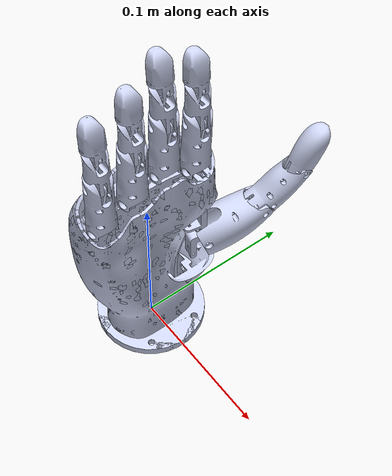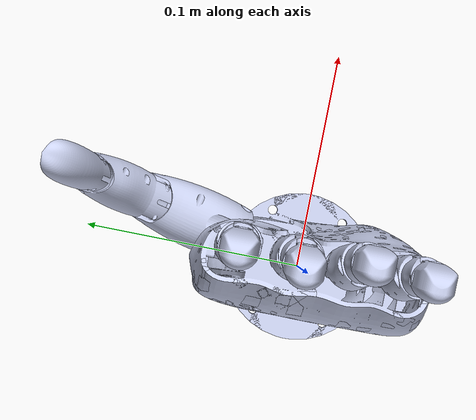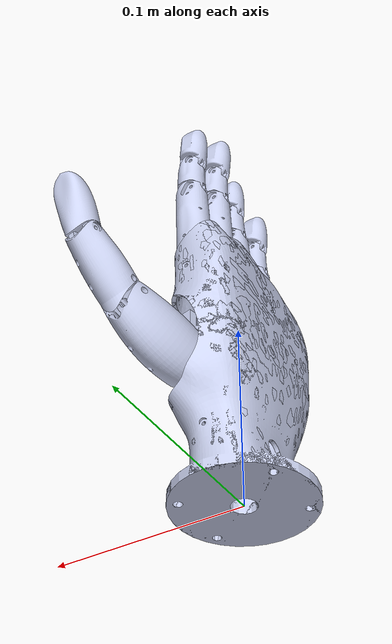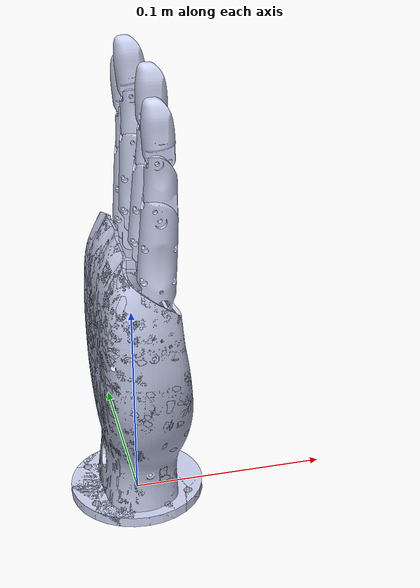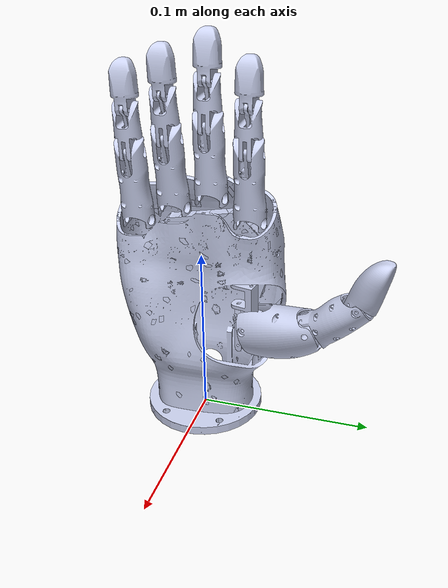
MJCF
<?xml version='1.0' encoding='utf-8'?>
<mujoco model="right2">
  <compiler angle="radian" />

  <asset>
    <mesh name="R_wrist" content_type="model/stl" file="/home/xiaoyi/Robotpianist/third_party/realman_linkhand/right2/urdf/../meshes/wrist.STL" />
    <mesh name="R_palm" content_type="model/stl" file="/home/xiaoyi/Robotpianist/third_party/realman_linkhand/right2/urdf/../meshes/palm.STL" />

    <mesh name="R_FF0" content_type="model/stl" file="/home/xiaoyi/Robotpianist/third_party/realman_linkhand/right2/urdf/../meshes/FF0.STL" />
    <mesh name="R_FF1" content_type="model/stl" file="/home/xiaoyi/Robotpianist/third_party/realman_linkhand/right2/urdf/../meshes/FF1.STL" />
    <mesh name="R_FF2" content_type="model/stl" file="/home/xiaoyi/Robotpianist/third_party/realman_linkhand/right2/urdf/../meshes/FF2.STL" />

    <mesh name="R_MF0" content_type="model/stl" file="/home/xiaoyi/Robotpianist/third_party/realman_linkhand/right2/urdf/../meshes/MF0.STL" />
    <mesh name="R_MF1" content_type="model/stl" file="/home/xiaoyi/Robotpianist/third_party/realman_linkhand/right2/urdf/../meshes/MF1.STL" />
    <mesh name="R_MF2" content_type="model/stl" file="/home/xiaoyi/Robotpianist/third_party/realman_linkhand/right2/urdf/../meshes/MF2.STL" />

    <mesh name="R_RF0" content_type="model/stl" file="/home/xiaoyi/Robotpianist/third_party/realman_linkhand/right2/urdf/../meshes/RF0.STL" />
    <mesh name="R_RF1" content_type="model/stl" file="/home/xiaoyi/Robotpianist/third_party/realman_linkhand/right2/urdf/../meshes/RF1.STL" />
    <mesh name="R_RF2" content_type="model/stl" file="/home/xiaoyi/Robotpianist/third_party/realman_linkhand/right2/urdf/../meshes/RF2.STL" />

    <mesh name="R_LF0" content_type="model/stl" file="/home/xiaoyi/Robotpianist/third_party/realman_linkhand/right2/urdf/../meshes/LF0.STL" />
    <mesh name="R_LF1" content_type="model/stl" file="/home/xiaoyi/Robotpianist/third_party/realman_linkhand/right2/urdf/../meshes/LF1.STL" />
    <mesh name="R_LF2" content_type="model/stl" file="/home/xiaoyi/Robotpianist/third_party/realman_linkhand/right2/urdf/../meshes/LF2.STL" />

    <mesh name="R_TH0" content_type="model/stl" file="/home/xiaoyi/Robotpianist/third_party/realman_linkhand/right2/urdf/../meshes/TH0.STL" />
    <mesh name="R_TH1" content_type="model/stl" file="/home/xiaoyi/Robotpianist/third_party/realman_linkhand/right2/urdf/../meshes/TH1.STL" />
    <mesh name="R_TH2" content_type="model/stl" file="/home/xiaoyi/Robotpianist/third_party/realman_linkhand/right2/urdf/../meshes/TH2.STL" />
    <mesh name="R_TH3" content_type="model/stl" file="/home/xiaoyi/Robotpianist/third_party/realman_linkhand/right2/urdf/../meshes/TH3.STL" />
  </asset>

  <worldbody>

    <body name="rh_forearm">
      <joint name="forearm_tx" type="slide" axis="1 0 0" range="-0.25 0.25" damping="5" />
      <joint name="forearm_ty" type="slide" axis="0 1 0" range="-0.15 0.35" damping="5" />

      <body name="R_wrist" quat="0.707388 0 0 0.706825">
        <inertial pos="-0.00247593 0.00146383 0.0596751" quat="0.658912 -0.0219388 0.0184009 0.751675" mass="0.0771456" diaginertia="0.000200452 0.000167408 6.49215e-05" />
        <geom type="mesh" rgba="0.792157 0.819608 0.933333 1" mesh="R_wrist" />

        <body name="R_palm" pos="0 -0.015 0.09">
          <inertial pos="-0.00247593 0.0164638 -0.0303249" quat="0.658912 -0.0219388 0.0184009 0.751675" mass="0.0771456" diaginertia="0.000200452 0.000167408 6.49215e-05" />
          <geom type="mesh" rgba="0.792157 0.819608 0.933333 1" mesh="R_palm" />

          <body name="R_FF0" pos="0.030314 0.0072 0.038239">
            <inertial pos="7.00166e-05 0.000950121 0.024059" quat="0.999779 0.0210434 3.74838e-05 1.62207e-05" mass="0.00340283" diaginertia="6.64957e-07 6.12161e-07 8.06474e-08" />
            <joint name="R_FFJ0" pos="0 0 0" axis="1 0 0" range="0 1.39" />
            <geom type="mesh" rgba="0.792157 0.819608 0.933333 1" mesh="R_FF0" />

            <body name="R_FF1" pos="5e-05 0.0012951 0.038702">
              <inertial pos="-0.00010441 -0.00139787 0.0122389" quat="0.704136 -0.0345662 0.0354522 0.708337" mass="0.00218242" diaginertia="1.36883e-07 1.32356e-07 5.49716e-08" />
              <joint name="R_FFJ1" pos="0 0 0" axis="0.999962 0 0.00875991" range="-0.07 1.57" />
              <geom type="mesh" rgba="0.792157 0.819608 0.933333 1" mesh="R_FF1" />

              <body name="rh_ffdistal" pos="-5e-05 0.0014086 0.024473">
                <inertial pos="-2.55604e-06 -0.00101427 0.0121071" quat="0.697444 -0.107058 0.108203 0.700287" mass="0.00307284" diaginertia="1.35225e-07 1.28587e-07 5.64318e-08" />
                <joint name="R_FFJ2" pos="0 0 0" axis="1 0 0" range="-0.07 1.127" />
                <geom type="mesh" rgba="0.792157 0.819608 0.933333 1" mesh="R_FF2" />
              </body>
            </body>
          </body>

          <body name="R_MF0" pos="0.0088831 0.0072 0.049976">
            <inertial pos="-0.000140651 0.00127356 0.0240479" quat="0.999891 0.0141328 -0.004342 7.75137e-05" mass="0.00340283" diaginertia="6.64958e-07 6.12205e-07 8.06043e-08" />
            <joint name="R_MFJ0" pos="0 0 0" axis="0.999962 0 0.00875991" range="0 1.39" />
            <geom type="mesh" rgba="0.792157 0.819608 0.933333 1" mesh="R_MF0" />

            <body name="R_MF1" pos="-0.00033884 0.0018214 0.038679">
              <inertial pos="-5.48418e-05 -0.00111605 0.0122691" quat="0.703872 -0.0458271 0.0405788 0.707685" mass="0.00218242" diaginertia="1.36893e-07 1.32356e-07 5.49624e-08" />
              <joint name="R_MFJ1" pos="0 0 0" axis="0.999962 0 0.00875991" range="-0.07 1.57" />
              <geom type="mesh" rgba="0.792157 0.819608 0.933333 1" mesh="R_MF1" />

              <body name="rh_mfdistal" pos="-0.00011404 0.0019726 0.024433">
                <inertial pos="-0.000108805 -0.000669355 0.0121305" quat="0.696372 -0.12003 0.115107 0.698147" mass="0.00307283" diaginertia="1.35224e-07 1.28587e-07 5.64314e-08" />
                <joint name="R_MFJ2" pos="0 0 0" axis="0.999962 0 0.00875991" range="-0.07 1.127" />
                <geom type="mesh" rgba="0.792157 0.819608 0.933333 1" mesh="R_MF2" />
              </body>
            </body>
          </body>

          <body name="R_RF0" pos="-0.01265 0.0072 0.041936">
            <inertial pos="-0.000570328 0.000202254 0.0240602" quat="0.99923 0.0370074 -0.0130602 0.000500057" mass="0.00340282" diaginertia="6.64957e-07 6.1206e-07 8.07485e-08" />
            <joint name="R_RFJ0" pos="0 0 0" axis="0.999656 0 0.0262099" range="0 1.39" />
            <geom type="mesh" rgba="0.792157 0.819608 0.933333 1" mesh="R_RF0" />

            <body name="R_RF1" pos="-0.0010149 7.7837e-05 0.03871">
              <inertial pos="-0.000297542 -0.00205508 0.012139" quat="0.704959 -0.0247153 0.00695692 0.708783" mass="0.00218242" diaginertia="1.36862e-07 1.32356e-07 5.49934e-08" />
              <joint name="R_RFJ1" pos="0 0 0" axis="0.999656 0 0.0262099" range="-0.07 1.57" />
              <geom type="mesh" rgba="0.792157 0.819608 0.933333 1" mesh="R_RF1" />

              <body name="rh_rfdistal" pos="-0.00054253 8.4052e-05 0.024507">
                <inertial pos="-0.000317355 -0.00182471 0.0120074" quat="0.701708 -0.0927879 0.0754359 0.702358" mass="0.00307282" diaginertia="1.35224e-07 1.28586e-07 5.64313e-08" />
                <joint name="R_RFJ2" pos="0 0 0" axis="0.999656 0 0.0262099" range="-0.07 1.127" />
                <geom type="mesh" rgba="0.792157 0.819608 0.933333 1" mesh="R_RF2" />
              </body>
            </body>
          </body>

          <body name="R_LF0" pos="-0.03389 0.0072 0.03182">
            <inertial pos="-0.000770709 0.000597502 0.0240535" quat="0.99944 0.028569 -0.0174246 0.000514174" mass="0.00340283" diaginertia="6.64958e-07 6.12114e-07 8.06948e-08" />
            <joint name="R_LFJ0" pos="0 0 0" axis="0.99939 0 0.034933" range="0 1.39" />
            <geom type="mesh" rgba="0.792157 0.819608 0.933333 1" mesh="R_LF0" />

            <body name="R_LF1" pos="-0.00135248 0.000721262 0.0386928">
              <inertial pos="-0.000382903 -0.00170686 0.0121923" quat="0.704872 -0.0379664 0.0141107 0.708177" mass="0.00218242" diaginertia="1.36873e-07 1.32356e-07 5.49818e-08" />
              <joint name="R_LFJ1" pos="0 0 0" axis="0.99939 0 -0.0349329" range="-0.07 1.57" />
              <geom type="mesh" rgba="0.792157 0.819608 0.933333 1" mesh="R_LF1" />

              <body name="rh_lfdistal" pos="-0.00075593 0.000787496 0.0244889">
                <inertial pos="-0.000424168 -0.0013943 0.0120617" quat="0.700631 -0.10833 0.0849563 0.700116" mass="0.00307284" diaginertia="1.35225e-07 1.28587e-07 5.64318e-08" />
                <joint name="R_LFJ2" pos="0 0 0" axis="0.99939 0 -0.0349329" range="-0.07 1.127" />
                <geom type="mesh" rgba="0.792157 0.819608 0.933333 1" mesh="R_LF2" />
              </body>
            </body>
          </body>

          <body name="R_TH0" pos="0.024308 0.0072 -0.0072638">
            <inertial pos="0.00462408 -0.000961791 -0.0113431" quat="0.775192 0.0852636 0.0696261 0.622061" mass="0.00177583" diaginertia="1.88787e-07 1.83937e-07 2.45876e-08" />
            <joint name="R_THJ0" pos="0 0 0" axis="0.00875991 0 -0.999962" range="0 2.2" />
            <geom type="mesh" rgba="0.792157 0.819608 0.933333 1" mesh="R_TH0" />

            <body name="R_TH1" pos="0.0074818 -0.0015357 -0.016035">
              <inertial pos="0.0209989 -0.00448393 -0.000378601" quat="0.597783 0.494688 0.401674 0.486413" mass="0.00445548" diaginertia="1.17794e-06 9.02118e-07 3.85348e-07" />
              <joint name="R_THJ1" pos="0 0 0" axis="-0.20476 -0.978811 -0.0017937" range="0 0.7" />
              <geom type="mesh" rgba="0.792157 0.819608 0.933333 1" mesh="R_TH1" />

              <body name="R_TH2" pos="0.037244 -0.0079076 0.0077723">
                <inertial pos="0.013245 -0.002669 0.00971292" quat="0.662863 0.403408 0.327111 0.539326" mass="0.00247793" diaginertia="3.39437e-07 2.60053e-07 1.19202e-07" />
                <joint name="R_THJ2" pos="0 0 0" axis="0.20476 -0.978811 0.0017937" range="0 0.928" />
                <geom type="mesh" rgba="0.792157 0.819608 0.933333 1" mesh="R_TH2" />

                <body name="rh_thdistal" pos="0.026651 -0.005665 0.021132">
                  <inertial pos="0.00493733 -0.00105989 0.013027" quat="0.950609 0.0297824 0.291908 -0.101216" mass="0.00562433" diaginertia="4.1525e-07 3.88113e-07 1.65566e-07" />
                  <joint name="R_THJ3" pos="0 0 0" axis="0.20476 -0.978811 0.0017937" range="0 1.136" />
                  <geom type="mesh" rgba="0.792157 0.819608 0.933333 1" mesh="R_TH3" />
                </body>
              </body>
            </body>
          </body>

        </body>
      </body>
    </body>
  </worldbody>

  <actuator>

    <position name="forearm_tx" joint="forearm_tx" kp="200" kv="10" forcerange="-50 50" ctrlrange="-0.25 0.25" />
    <position name="forearm_ty" joint="forearm_ty" kp="200" kv="10" forcerange="-50 50" ctrlrange="-0.15 0.35" />

    <position name="R_FFJ0_act" joint="R_FFJ0" kp="20" kv="2" forcerange="-0.6 0.6" ctrlrange="0 1.39" />
    <position name="R_FFJ1_act" joint="R_FFJ1" kp="20" kv="2" forcerange="-0.6 0.6" ctrlrange="-0.07 1.57" />
    <position name="R_FFJ2_act" joint="R_FFJ2" kp="20" kv="2" forcerange="-0.6 0.6" ctrlrange="-0.07 1.127" />

    <position name="R_MFJ0_act" joint="R_MFJ0" kp="20" kv="2" forcerange="-0.6 0.6" ctrlrange="0 1.39" />
    <position name="R_MFJ1_act" joint="R_MFJ1" kp="20" kv="2" forcerange="-0.6 0.6" ctrlrange="-0.07 1.57" />
    <position name="R_MFJ2_act" joint="R_MFJ2" kp="20" kv="2" forcerange="-0.6 0.6" ctrlrange="-0.07 1.127" />

    <position name="R_RFJ0_act" joint="R_RFJ0" kp="20" kv="2" forcerange="-0.6 0.6" ctrlrange="0 1.39" />
    <position name="R_RFJ1_act" joint="R_RFJ1" kp="20" kv="2" forcerange="-0.6 0.6" ctrlrange="-0.07 1.57" />
    <position name="R_RFJ2_act" joint="R_RFJ2" kp="20" kv="2" forcerange="-0.6 0.6" ctrlrange="-0.07 1.127" />

    <position name="R_LFJ0_act" joint="R_LFJ0" kp="20" kv="2" forcerange="-0.6 0.6" ctrlrange="0 1.39" />
    <position name="R_LFJ1_act" joint="R_LFJ1" kp="20" kv="2" forcerange="-0.6 0.6" ctrlrange="-0.07 1.57" />
    <position name="R_LFJ2_act" joint="R_LFJ2" kp="20" kv="2" forcerange="-0.6 0.6" ctrlrange="-0.07 1.127" />

    <position name="R_THJ0_act" joint="R_THJ0" kp="20" kv="2" forcerange="-0.6 0.6" ctrlrange="0 2.2" />
    <position name="R_THJ1_act" joint="R_THJ1" kp="20" kv="2" forcerange="-0.6 0.6" ctrlrange="0 0.7" />
    <position name="R_THJ2_act" joint="R_THJ2" kp="20" kv="2" forcerange="-0.6 0.6" ctrlrange="0 0.928" />
    <position name="R_THJ3_act" joint="R_THJ3" kp="20" kv="2" forcerange="-0.6 0.6" ctrlrange="0 1.136" />
  </actuator>
</mujoco>
